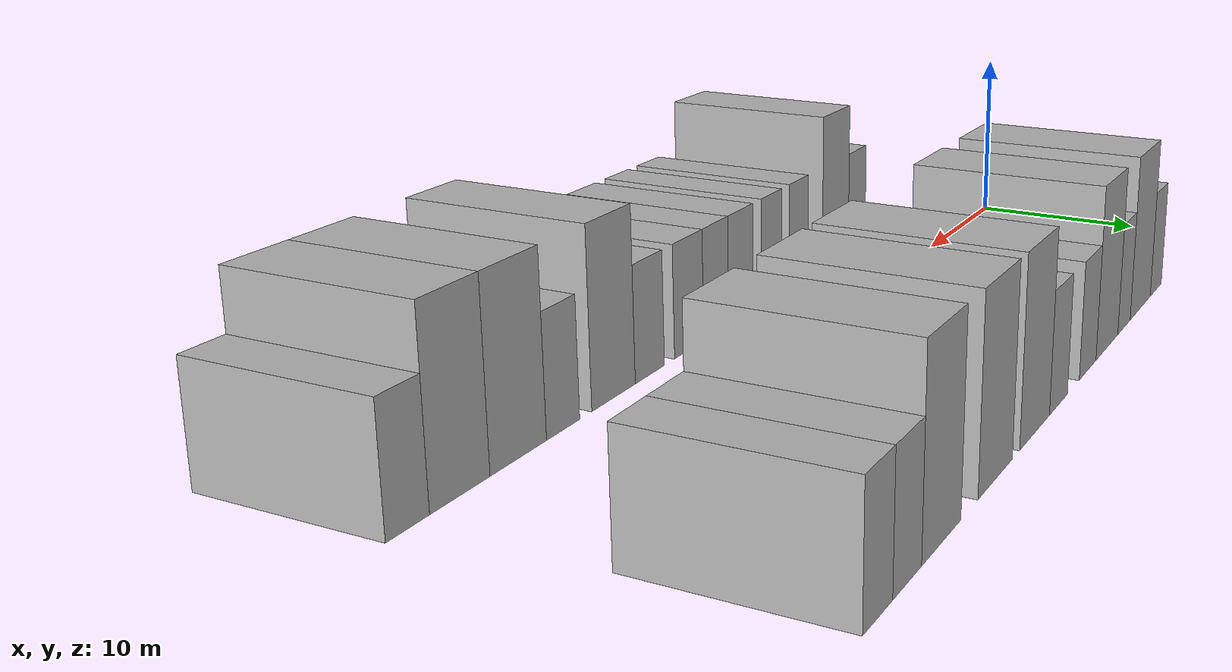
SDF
<sdf version="1.6">
 <world name="default">
  <model name="building_1">
   <static>1</static>
   <pose>12.2993 9.5000 0 0.000000 0.000000 1.570796</pose>
   <link name="link">
    <pose>0 0 3.00 0 0 0</pose>
    <collision name="collision"><geometry><box><size>10.0000 2.5986 6.0000</size></box></geometry></collision>
    <visual name="visual">
     <cast_shadows>0</cast_shadows>
     <geometry><box><size>10.0000 2.5986 6.0000</size></box></geometry>
     <material>
      <script>
       <uri>model://HANNAS_wall/materials/scripts</uri>
       <uri>model://HANNAS_wall/materials/textures</uri>
       <name>vrc/HANNAS_wall</name>
      </script>
     </material>
    </visual>
   </link>
  </model>
  <model name="building_2">
   <static>1</static>
   <pose>15.8166 9.5000 0 0.000000 0.000000 1.570796</pose>
   <link name="link">
    <pose>0 0 4.50 0 0 0</pose>
    <collision name="collision"><geometry><box><size>10.0000 4.4359 9.0000</size></box></geometry></collision>
    <visual name="visual">
     <cast_shadows>0</cast_shadows>
     <geometry><box><size>10.0000 4.4359 9.0000</size></box></geometry>
     <material>
      <script>
       <uri>model://HANNAS_wall/materials/scripts</uri>
       <uri>model://HANNAS_wall/materials/textures</uri>
       <name>vrc/HANNAS_wall</name>
      </script>
     </material>
    </visual>
   </link>
  </model>
  <model name="building_3">
   <static>1</static>
   <pose>19.3068 9.5000 0 0.000000 0.000000 1.570796</pose>
   <link name="link">
    <pose>0 0 3.00 0 0 0</pose>
    <collision name="collision"><geometry><box><size>10.0000 2.5445 6.0000</size></box></geometry></collision>
    <visual name="visual">
     <cast_shadows>0</cast_shadows>
     <geometry><box><size>10.0000 2.5445 6.0000</size></box></geometry>
     <material>
      <script>
       <uri>model://HANNAS_wall/materials/scripts</uri>
       <uri>model://HANNAS_wall/materials/textures</uri>
       <name>vrc/HANNAS_wall</name>
      </script>
     </material>
    </visual>
   </link>
  </model>
  <model name="building_4">
   <static>1</static>
   <pose>22.6740 9.5000 0 0.000000 0.000000 1.570796</pose>
   <link name="link">
    <pose>0 0 4.50 0 0 0</pose>
    <collision name="collision"><geometry><box><size>10.0000 4.1901 9.0000</size></box></geometry></collision>
    <visual name="visual">
     <cast_shadows>0</cast_shadows>
     <geometry><box><size>10.0000 4.1901 9.0000</size></box></geometry>
     <material>
      <script>
       <uri>model://HANNAS_wall/materials/scripts</uri>
       <uri>model://HANNAS_wall/materials/textures</uri>
       <name>vrc/HANNAS_wall</name>
      </script>
     </material>
    </visual>
   </link>
  </model>
  <model name="building_5">
   <static>1</static>
   <pose>26.2498 9.5000 0 0.000000 0.000000 1.570796</pose>
   <link name="link">
    <pose>0 0 3.00 0 0 0</pose>
    <collision name="collision"><geometry><box><size>10.0000 2.9615 6.0000</size></box></geometry></collision>
    <visual name="visual">
     <cast_shadows>0</cast_shadows>
     <geometry><box><size>10.0000 2.9615 6.0000</size></box></geometry>
     <material>
      <script>
       <uri>model://HANNAS_wall/materials/scripts</uri>
       <uri>model://HANNAS_wall/materials/textures</uri>
       <name>vrc/HANNAS_wall</name>
      </script>
     </material>
    </visual>
   </link>
  </model>
  <model name="building_6">
   <static>1</static>
   <pose>31.1484 9.5000 0 0.000000 0.000000 1.570796</pose>
   <link name="link">
    <pose>0 0 3.00 0 0 0</pose>
    <collision name="collision"><geometry><box><size>10.0000 2.8357 6.0000</size></box></geometry></collision>
    <visual name="visual">
     <cast_shadows>0</cast_shadows>
     <geometry><box><size>10.0000 2.8357 6.0000</size></box></geometry>
     <material>
      <script>
       <uri>model://HANNAS_wall/materials/scripts</uri>
       <uri>model://HANNAS_wall/materials/textures</uri>
       <name>vrc/HANNAS_wall</name>
      </script>
     </material>
    </visual>
   </link>
  </model>
  <model name="building_7">
   <static>1</static>
   <pose>34.7326 9.5000 0 0.000000 0.000000 1.570796</pose>
   <link name="link">
    <pose>0 0 4.50 0 0 0</pose>
    <collision name="collision"><geometry><box><size>10.0000 4.3327 9.0000</size></box></geometry></collision>
    <visual name="visual">
     <cast_shadows>0</cast_shadows>
     <geometry><box><size>10.0000 4.3327 9.0000</size></box></geometry>
     <material>
      <script>
       <uri>model://HANNAS_wall/materials/scripts</uri>
       <uri>model://HANNAS_wall/materials/textures</uri>
       <name>vrc/HANNAS_wall</name>
      </script>
     </material>
    </visual>
   </link>
  </model>
  <model name="building_8">
   <static>1</static>
   <pose>40.0762 9.5000 0 0.000000 0.000000 1.570796</pose>
   <link name="link">
    <pose>0 0 4.50 0 0 0</pose>
    <collision name="collision"><geometry><box><size>10.0000 4.3544 9.0000</size></box></geometry></collision>
    <visual name="visual">
     <cast_shadows>0</cast_shadows>
     <geometry><box><size>10.0000 4.3544 9.0000</size></box></geometry>
     <material>
      <script>
       <uri>model://HANNAS_wall/materials/scripts</uri>
       <uri>model://HANNAS_wall/materials/textures</uri>
       <name>vrc/HANNAS_wall</name>
      </script>
     </material>
    </visual>
   </link>
  </model>
  <model name="building_9">
   <static>1</static>
   <pose>46.3475 9.5000 0 0.000000 0.000000 1.570796</pose>
   <link name="link">
    <pose>0 0 4.50 0 0 0</pose>
    <collision name="collision"><geometry><box><size>10.0000 4.1883 9.0000</size></box></geometry></collision>
    <visual name="visual">
     <cast_shadows>0</cast_shadows>
     <geometry><box><size>10.0000 4.1883 9.0000</size></box></geometry>
     <material>
      <script>
       <uri>model://HANNAS_wall/materials/scripts</uri>
       <uri>model://HANNAS_wall/materials/textures</uri>
       <name>vrc/HANNAS_wall</name>
      </script>
     </material>
    </visual>
   </link>
  </model>
  <model name="building_10">
   <static>1</static>
   <pose>49.8299 9.5000 0 0.000000 0.000000 1.570796</pose>
   <link name="link">
    <pose>0 0 3.00 0 0 0</pose>
    <collision name="collision"><geometry><box><size>10.0000 2.7763 6.0000</size></box></geometry></collision>
    <visual name="visual">
     <cast_shadows>0</cast_shadows>
     <geometry><box><size>10.0000 2.7763 6.0000</size></box></geometry>
     <material>
      <script>
       <uri>model://HANNAS_wall/materials/scripts</uri>
       <uri>model://HANNAS_wall/materials/textures</uri>
       <name>vrc/HANNAS_wall</name>
      </script>
     </material>
    </visual>
   </link>
  </model>
  <model name="building_11">
   <static>1</static>
   <pose>52.5559 9.5000 0 0.000000 0.000000 1.570796</pose>
   <link name="link">
    <pose>0 0 3.00 0 0 0</pose>
    <collision name="collision"><geometry><box><size>10.0000 2.6757 6.0000</size></box></geometry></collision>
    <visual name="visual">
     <cast_shadows>0</cast_shadows>
     <geometry><box><size>10.0000 2.6757 6.0000</size></box></geometry>
     <material>
      <script>
       <uri>model://HANNAS_wall/materials/scripts</uri>
       <uri>model://HANNAS_wall/materials/textures</uri>
       <name>vrc/HANNAS_wall</name>
      </script>
     </material>
    </visual>
   </link>
  </model>
  <model name="building_48">
   <static>1</static>
   <pose>11.2887 -9.5000 0 0.000000 0.000000 1.570796</pose>
   <link name="link">
    <pose>0 0 3.00 0 0 0</pose>
    <collision name="collision"><geometry><box><size>10.0000 2.5773 6.0000</size></box></geometry></collision>
    <visual name="visual">
     <cast_shadows>0</cast_shadows>
     <geometry><box><size>10.0000 2.5773 6.0000</size></box></geometry>
     <material>
      <script>
       <uri>model://HANNAS_wall/materials/scripts</uri>
       <uri>model://HANNAS_wall/materials/textures</uri>
       <name>vrc/HANNAS_wall</name>
      </script>
     </material>
    </visual>
   </link>
  </model>
  <model name="building_49">
   <static>1</static>
   <pose>14.4605 -9.5000 0 0.000000 0.000000 1.570796</pose>
   <link name="link">
    <pose>0 0 4.50 0 0 0</pose>
    <collision name="collision"><geometry><box><size>10.0000 3.7664 9.0000</size></box></geometry></collision>
    <visual name="visual">
     <cast_shadows>0</cast_shadows>
     <geometry><box><size>10.0000 3.7664 9.0000</size></box></geometry>
     <material>
      <script>
       <uri>model://HANNAS_wall/materials/scripts</uri>
       <uri>model://HANNAS_wall/materials/textures</uri>
       <name>vrc/HANNAS_wall</name>
      </script>
     </material>
    </visual>
   </link>
  </model>
  <model name="building_50">
   <static>1</static>
   <pose>19.5843 -9.5000 0 0.000000 0.000000 1.570796</pose>
   <link name="link">
    <pose>0 0 3.00 0 0 0</pose>
    <collision name="collision"><geometry><box><size>10.0000 2.4811 6.0000</size></box></geometry></collision>
    <visual name="visual">
     <cast_shadows>0</cast_shadows>
     <geometry><box><size>10.0000 2.4811 6.0000</size></box></geometry>
     <material>
      <script>
       <uri>model://HANNAS_wall/materials/scripts</uri>
       <uri>model://HANNAS_wall/materials/textures</uri>
       <name>vrc/HANNAS_wall</name>
      </script>
     </material>
    </visual>
   </link>
  </model>
  <model name="building_51">
   <static>1</static>
   <pose>23.0734 -9.5000 0 0.000000 0.000000 1.570796</pose>
   <link name="link">
    <pose>0 0 3.00 0 0 0</pose>
    <collision name="collision"><geometry><box><size>10.0000 2.4972 6.0000</size></box></geometry></collision>
    <visual name="visual">
     <cast_shadows>0</cast_shadows>
     <geometry><box><size>10.0000 2.4972 6.0000</size></box></geometry>
     <material>
      <script>
       <uri>model://HANNAS_wall/materials/scripts</uri>
       <uri>model://HANNAS_wall/materials/textures</uri>
       <name>vrc/HANNAS_wall</name>
      </script>
     </material>
    </visual>
   </link>
  </model>
  <model name="building_52">
   <static>1</static>
   <pose>26.7437 -9.5000 0 0.000000 0.000000 1.570796</pose>
   <link name="link">
    <pose>0 0 3.00 0 0 0</pose>
    <collision name="collision"><geometry><box><size>10.0000 2.8434 6.0000</size></box></geometry></collision>
    <visual name="visual">
     <cast_shadows>0</cast_shadows>
     <geometry><box><size>10.0000 2.8434 6.0000</size></box></geometry>
     <material>
      <script>
       <uri>model://HANNAS_wall/materials/scripts</uri>
       <uri>model://HANNAS_wall/materials/textures</uri>
       <name>vrc/HANNAS_wall</name>
      </script>
     </material>
    </visual>
   </link>
  </model>
  <model name="building_53">
   <static>1</static>
   <pose>29.5321 -9.5000 0 0.000000 0.000000 1.570796</pose>
   <link name="link">
    <pose>0 0 3.00 0 0 0</pose>
    <collision name="collision"><geometry><box><size>10.0000 2.7334 6.0000</size></box></geometry></collision>
    <visual name="visual">
     <cast_shadows>0</cast_shadows>
     <geometry><box><size>10.0000 2.7334 6.0000</size></box></geometry>
     <material>
      <script>
       <uri>model://HANNAS_wall/materials/scripts</uri>
       <uri>model://HANNAS_wall/materials/textures</uri>
       <name>vrc/HANNAS_wall</name>
      </script>
     </material>
    </visual>
   </link>
  </model>
  <model name="building_54">
   <static>1</static>
   <pose>32.3926 -9.5000 0 0.000000 0.000000 1.570796</pose>
   <link name="link">
    <pose>0 0 3.00 0 0 0</pose>
    <collision name="collision"><geometry><box><size>10.0000 2.9876 6.0000</size></box></geometry></collision>
    <visual name="visual">
     <cast_shadows>0</cast_shadows>
     <geometry><box><size>10.0000 2.9876 6.0000</size></box></geometry>
     <material>
      <script>
       <uri>model://HANNAS_wall/materials/scripts</uri>
       <uri>model://HANNAS_wall/materials/textures</uri>
       <name>vrc/HANNAS_wall</name>
      </script>
     </material>
    </visual>
   </link>
  </model>
  <model name="building_55">
   <static>1</static>
   <pose>36.2590 -9.5000 0 0.000000 0.000000 1.570796</pose>
   <link name="link">
    <pose>0 0 3.00 0 0 0</pose>
    <collision name="collision"><geometry><box><size>10.0000 2.7454 6.0000</size></box></geometry></collision>
    <visual name="visual">
     <cast_shadows>0</cast_shadows>
     <geometry><box><size>10.0000 2.7454 6.0000</size></box></geometry>
     <material>
      <script>
       <uri>model://HANNAS_wall/materials/scripts</uri>
       <uri>model://HANNAS_wall/materials/textures</uri>
       <name>vrc/HANNAS_wall</name>
      </script>
     </material>
    </visual>
   </link>
  </model>
  <model name="building_56">
   <static>1</static>
   <pose>39.5368 -9.5000 0 0.000000 0.000000 1.570796</pose>
   <link name="link">
    <pose>0 0 4.50 0 0 0</pose>
    <collision name="collision"><geometry><box><size>10.0000 3.8101 9.0000</size></box></geometry></collision>
    <visual name="visual">
     <cast_shadows>0</cast_shadows>
     <geometry><box><size>10.0000 3.8101 9.0000</size></box></geometry>
     <material>
      <script>
       <uri>model://HANNAS_wall/materials/scripts</uri>
       <uri>model://HANNAS_wall/materials/textures</uri>
       <name>vrc/HANNAS_wall</name>
      </script>
     </material>
    </visual>
   </link>
  </model>
  <model name="building_57">
   <static>1</static>
   <pose>43.7540 -9.5000 0 0.000000 0.000000 1.570796</pose>
   <link name="link">
    <pose>0 0 3.00 0 0 0</pose>
    <collision name="collision"><geometry><box><size>10.0000 2.6242 6.0000</size></box></geometry></collision>
    <visual name="visual">
     <cast_shadows>0</cast_shadows>
     <geometry><box><size>10.0000 2.6242 6.0000</size></box></geometry>
     <material>
      <script>
       <uri>model://HANNAS_wall/materials/scripts</uri>
       <uri>model://HANNAS_wall/materials/textures</uri>
       <name>vrc/HANNAS_wall</name>
      </script>
     </material>
    </visual>
   </link>
  </model>
  <model name="building_58">
   <static>1</static>
   <pose>47.1212 -9.5000 0 0.000000 0.000000 1.570796</pose>
   <link name="link">
    <pose>0 0 4.50 0 0 0</pose>
    <collision name="collision"><geometry><box><size>10.0000 4.1103 9.0000</size></box></geometry></collision>
    <visual name="visual">
     <cast_shadows>0</cast_shadows>
     <geometry><box><size>10.0000 4.1103 9.0000</size></box></geometry>
     <material>
      <script>
       <uri>model://HANNAS_wall/materials/scripts</uri>
       <uri>model://HANNAS_wall/materials/textures</uri>
       <name>vrc/HANNAS_wall</name>
      </script>
     </material>
    </visual>
   </link>
  </model>
  <model name="building_59">
   <static>1</static>
   <pose>51.1539 -9.5000 0 0.000000 0.000000 1.570796</pose>
   <link name="link">
    <pose>0 0 4.50 0 0 0</pose>
    <collision name="collision"><geometry><box><size>10.0000 3.9550 9.0000</size></box></geometry></collision>
    <visual name="visual">
     <cast_shadows>0</cast_shadows>
     <geometry><box><size>10.0000 3.9550 9.0000</size></box></geometry>
     <material>
      <script>
       <uri>model://HANNAS_wall/materials/scripts</uri>
       <uri>model://HANNAS_wall/materials/textures</uri>
       <name>vrc/HANNAS_wall</name>
      </script>
     </material>
    </visual>
   </link>
  </model>
  <model name="building_60">
   <static>1</static>
   <pose>54.4540 -9.5000 0 0.000000 0.000000 1.570796</pose>
   <link name="link">
    <pose>0 0 3.00 0 0 0</pose>
    <collision name="collision"><geometry><box><size>10.0000 2.6453 6.0000</size></box></geometry></collision>
    <visual name="visual">
     <cast_shadows>0</cast_shadows>
     <geometry><box><size>10.0000 2.6453 6.0000</size></box></geometry>
     <material>
      <script>
       <uri>model://HANNAS_wall/materials/scripts</uri>
       <uri>model://HANNAS_wall/materials/textures</uri>
       <name>vrc/HANNAS_wall</name>
      </script>
     </material>
    </visual>
   </link>
  </model>
 </world>
</sdf>
